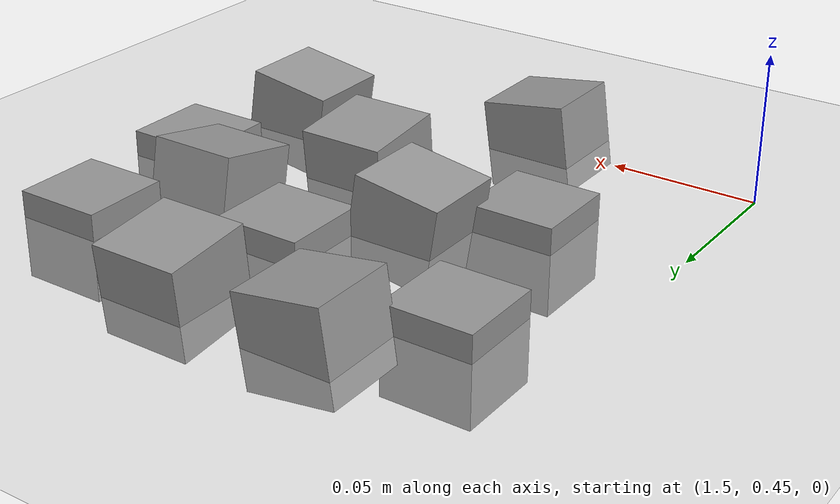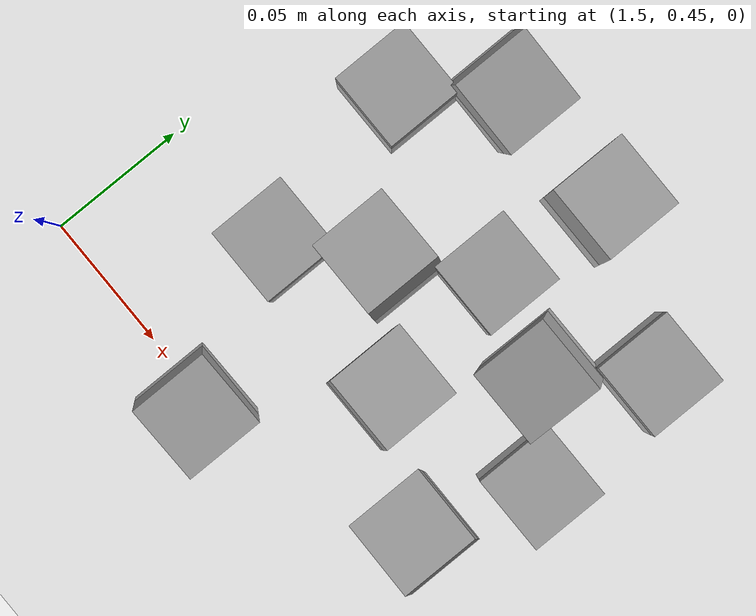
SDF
<sdf version="1.7">
 <world name="default">
  <model name="ground_plane">
   <static>1</static>
   <link name="link">
    <collision name="collision">
     <geometry><plane><normal>0 0 1</normal><size>100 100</size></plane></geometry>
     <surface><friction><ode><mu>100</mu><mu2>50</mu2></ode></friction></surface>
    </collision>
    <visual name="visual">
     <cast_shadows>0</cast_shadows>
     <geometry><plane><normal>0 0 1</normal><size>100 100</size></plane></geometry>
     <material>
      <script><uri>file://media/materials/scripts/gazebo.material</uri><name>Gazebo/Grey</name></script>
     </material>
    </visual>
   </link>
  </model>
  <model name="stone_road_0">
   <link name="link_0_clone_13">
    <inertial>
     <mass>1</mass>
     <inertia>
      <ixx>0.166667</ixx>
      <ixy>0</ixy>
      <ixz>0</ixz>
      <iyy>0.166667</iyy>
      <iyz>0</iyz>
      <izz>0.166667</izz>
     </inertia>
    </inertial>
    <pose>0.107601 -0.134881 0.003778 0.2 -0 0</pose>
    <kinematic>1</kinematic>
    <visual name="visual">
     <geometry><box><size>0.03 0.03 0.03</size></box></geometry>
     <material>
      <lighting>1</lighting>
      <script><uri>file://media/materials/scripts/gazebo.material</uri><name>Gazebo/Grey</name></script>
      <shader type="pixel"><normal_map>__default__</normal_map></shader>
      <ambient>0.3 0.3 0.3 1</ambient>
      <diffuse>0.7 0.7 0.7 1</diffuse>
      <specular>0.01 0.01 0.01 1</specular>
      <emissive>0 0 0 1</emissive>
     </material>
    </visual>
    <collision name="collision">
     <geometry><box><size>0.03 0.03 0.03</size></box></geometry>
     <surface>
      <friction>
       <ode><mu>1</mu><mu2>1</mu2><fdir1>0 0 0</fdir1><slip1>0</slip1><slip2>0</slip2></ode>
       <torsional>
        <coefficient>1</coefficient>
        <patch_radius>0</patch_radius>
        <surface_radius>0</surface_radius>
        <use_patch_radius>1</use_patch_radius>
        <ode><slip>0</slip></ode>
       </torsional>
      </friction>
      <bounce><restitution_coefficient>0</restitution_coefficient><threshold>1e+06</threshold></bounce>
      <contact>
       <collide_without_contact>0</collide_without_contact>
       <collide_without_contact_bitmask>1</collide_without_contact_bitmask>
       <collide_bitmask>1</collide_bitmask>
       <ode>
        <soft_cfm>0</soft_cfm>
        <soft_erp>0.2</soft_erp>
        <kp>1e+13</kp>
        <kd>1</kd>
        <max_vel>0.01</max_vel>
        <min_depth>0</min_depth>
       </ode>
       <bullet>
        <split_impulse>1</split_impulse>
        <split_impulse_penetration_threshold>-0.01</split_impulse_penetration_threshold>
        <soft_cfm>0</soft_cfm>
        <soft_erp>0.2</soft_erp>
        <kp>1e+13</kp>
        <kd>1</kd>
       </bullet>
      </contact>
     </surface>
    </collision>
   </link>
   <link name="link_0_clone_2_clone_0">
    <inertial>
     <mass>1</mass>
     <inertia>
      <ixx>0.166667</ixx>
      <ixy>0</ixy>
      <ixz>0</ixz>
      <iyy>0.166667</iyy>
      <iyz>0</iyz>
      <izz>0.166667</izz>
     </inertia>
    </inertial>
    <pose>0.026852 -0.0813 0.003778 0 0.15 0</pose>
    <kinematic>1</kinematic>
    <visual name="visual">
     <geometry><box><size>0.03 0.03 0.03</size></box></geometry>
     <material>
      <lighting>1</lighting>
      <script><uri>file://media/materials/scripts/gazebo.material</uri><name>Gazebo/Grey</name></script>
      <shader type="pixel"><normal_map>__default__</normal_map></shader>
      <ambient>0.3 0.3 0.3 1</ambient>
      <diffuse>0.7 0.7 0.7 1</diffuse>
      <specular>0.01 0.01 0.01 1</specular>
      <emissive>0 0 0 1</emissive>
     </material>
    </visual>
    <collision name="collision">
     <geometry><box><size>0.03 0.03 0.03</size></box></geometry>
     <surface>
      <friction>
       <ode><mu>1</mu><mu2>1</mu2><fdir1>0 0 0</fdir1><slip1>0</slip1><slip2>0</slip2></ode>
       <torsional>
        <coefficient>1</coefficient>
        <patch_radius>0</patch_radius>
        <surface_radius>0</surface_radius>
        <use_patch_radius>1</use_patch_radius>
        <ode><slip>0</slip></ode>
       </torsional>
      </friction>
      <bounce><restitution_coefficient>0</restitution_coefficient><threshold>1e+06</threshold></bounce>
      <contact>
       <collide_without_contact>0</collide_without_contact>
       <collide_without_contact_bitmask>1</collide_without_contact_bitmask>
       <collide_bitmask>1</collide_bitmask>
       <ode>
        <soft_cfm>0</soft_cfm>
        <soft_erp>0.2</soft_erp>
        <kp>1e+13</kp>
        <kd>1</kd>
        <max_vel>0.01</max_vel>
        <min_depth>0</min_depth>
       </ode>
       <bullet>
        <split_impulse>1</split_impulse>
        <split_impulse_penetration_threshold>-0.01</split_impulse_penetration_threshold>
        <soft_cfm>0</soft_cfm>
        <soft_erp>0.2</soft_erp>
        <kp>1e+13</kp>
        <kd>1</kd>
       </bullet>
      </contact>
     </surface>
    </collision>
   </link>
   <link name="link_0_clone_2_clone_2_clone_13_clone_clone_12">
    <inertial>
     <mass>1</mass>
     <inertia>
      <ixx>0.166667</ixx>
      <ixy>0</ixy>
      <ixz>0</ixz>
      <iyy>0.166667</iyy>
      <iyz>0</iyz>
      <izz>0.166667</izz>
     </inertia>
    </inertial>
    <pose>0.078701 -0.177208 0.003778 -0.1 0 0</pose>
    <kinematic>1</kinematic>
    <visual name="visual">
     <geometry><box><size>0.03 0.03 0.03</size></box></geometry>
     <material>
      <lighting>1</lighting>
      <script><uri>file://media/materials/scripts/gazebo.material</uri><name>Gazebo/Grey</name></script>
      <shader type="pixel"><normal_map>__default__</normal_map></shader>
      <ambient>0.3 0.3 0.3 1</ambient>
      <diffuse>0.7 0.7 0.7 1</diffuse>
      <specular>0.01 0.01 0.01 1</specular>
      <emissive>0 0 0 1</emissive>
     </material>
    </visual>
    <collision name="collision">
     <geometry><box><size>0.03 0.03 0.03</size></box></geometry>
     <surface>
      <friction>
       <ode><mu>1</mu><mu2>1</mu2><fdir1>0 0 0</fdir1><slip1>0</slip1><slip2>0</slip2></ode>
       <torsional>
        <coefficient>1</coefficient>
        <patch_radius>0</patch_radius>
        <surface_radius>0</surface_radius>
        <use_patch_radius>1</use_patch_radius>
        <ode><slip>0</slip></ode>
       </torsional>
      </friction>
      <bounce><restitution_coefficient>0</restitution_coefficient><threshold>1e+06</threshold></bounce>
      <contact>
       <collide_without_contact>0</collide_without_contact>
       <collide_without_contact_bitmask>1</collide_without_contact_bitmask>
       <collide_bitmask>1</collide_bitmask>
       <ode>
        <soft_cfm>0</soft_cfm>
        <soft_erp>0.2</soft_erp>
        <kp>1e+13</kp>
        <kd>1</kd>
        <max_vel>0.01</max_vel>
        <min_depth>0</min_depth>
       </ode>
       <bullet>
        <split_impulse>1</split_impulse>
        <split_impulse_penetration_threshold>-0.01</split_impulse_penetration_threshold>
        <soft_cfm>0</soft_cfm>
        <soft_erp>0.2</soft_erp>
        <kp>1e+13</kp>
        <kd>1</kd>
       </bullet>
      </contact>
     </surface>
    </collision>
   </link>
   <link name="link_0_clone_2_clone_2_clone_13_clone_clone_16_clone_15">
    <inertial>
     <mass>1</mass>
     <inertia>
      <ixx>0.166667</ixx>
      <ixy>0</ixy>
      <ixz>0</ixz>
      <iyy>0.166667</iyy>
      <iyz>0</iyz>
      <izz>0.166667</izz>
     </inertia>
    </inertial>
    <pose>0.133032 -0.103459 -0.006222 0 -0 0</pose>
    <kinematic>1</kinematic>
    <visual name="visual">
     <geometry><box><size>0.03 0.03 0.03</size></box></geometry>
     <material>
      <lighting>1</lighting>
      <script><uri>file://media/materials/scripts/gazebo.material</uri><name>Gazebo/Grey</name></script>
      <shader type="pixel"><normal_map>__default__</normal_map></shader>
      <ambient>0.3 0.3 0.3 1</ambient>
      <diffuse>0.7 0.7 0.7 1</diffuse>
      <specular>0.01 0.01 0.01 1</specular>
      <emissive>0 0 0 1</emissive>
     </material>
    </visual>
    <collision name="collision">
     <geometry><box><size>0.03 0.03 0.03</size></box></geometry>
     <surface>
      <friction>
       <ode><mu>1</mu><mu2>1</mu2><fdir1>0 0 0</fdir1><slip1>0</slip1><slip2>0</slip2></ode>
       <torsional>
        <coefficient>1</coefficient>
        <patch_radius>0</patch_radius>
        <surface_radius>0</surface_radius>
        <use_patch_radius>1</use_patch_radius>
        <ode><slip>0</slip></ode>
       </torsional>
      </friction>
      <bounce><restitution_coefficient>0</restitution_coefficient><threshold>1e+06</threshold></bounce>
      <contact>
       <collide_without_contact>0</collide_without_contact>
       <collide_without_contact_bitmask>1</collide_without_contact_bitmask>
       <collide_bitmask>1</collide_bitmask>
       <ode>
        <soft_cfm>0</soft_cfm>
        <soft_erp>0.2</soft_erp>
        <kp>1e+13</kp>
        <kd>1</kd>
        <max_vel>0.01</max_vel>
        <min_depth>0</min_depth>
       </ode>
       <bullet>
        <split_impulse>1</split_impulse>
        <split_impulse_penetration_threshold>-0.01</split_impulse_penetration_threshold>
        <soft_cfm>0</soft_cfm>
        <soft_erp>0.2</soft_erp>
        <kp>1e+13</kp>
        <kd>1</kd>
       </bullet>
      </contact>
     </surface>
    </collision>
   </link>
   <link name="link_0_clone_2_clone_2_clone_13_clone_clone_16_clone_16">
    <inertial>
     <mass>1</mass>
     <inertia>
      <ixx>0.166667</ixx>
      <ixy>0</ixy>
      <ixz>0</ixz>
      <iyy>0.166667</iyy>
      <iyz>0</iyz>
      <izz>0.166667</izz>
     </inertia>
    </inertial>
    <pose>0.071475 -0.124425 -0.006222 0 -0 0</pose>
    <kinematic>1</kinematic>
    <visual name="visual">
     <geometry><box><size>0.03 0.03 0.03</size></box></geometry>
     <material>
      <lighting>1</lighting>
      <script><uri>file://media/materials/scripts/gazebo.material</uri><name>Gazebo/Grey</name></script>
      <shader type="pixel"><normal_map>__default__</normal_map></shader>
      <ambient>0.3 0.3 0.3 1</ambient>
      <diffuse>0.7 0.7 0.7 1</diffuse>
      <specular>0.01 0.01 0.01 1</specular>
      <emissive>0 0 0 1</emissive>
     </material>
    </visual>
    <collision name="collision">
     <geometry><box><size>0.03 0.03 0.03</size></box></geometry>
     <surface>
      <friction>
       <ode><mu>1</mu><mu2>1</mu2><fdir1>0 0 0</fdir1><slip1>0</slip1><slip2>0</slip2></ode>
       <torsional>
        <coefficient>1</coefficient>
        <patch_radius>0</patch_radius>
        <surface_radius>0</surface_radius>
        <use_patch_radius>1</use_patch_radius>
        <ode><slip>0</slip></ode>
       </torsional>
      </friction>
      <bounce><restitution_coefficient>0</restitution_coefficient><threshold>1e+06</threshold></bounce>
      <contact>
       <collide_without_contact>0</collide_without_contact>
       <collide_without_contact_bitmask>1</collide_without_contact_bitmask>
       <collide_bitmask>1</collide_bitmask>
       <ode>
        <soft_cfm>0</soft_cfm>
        <soft_erp>0.2</soft_erp>
        <kp>1e+13</kp>
        <kd>1</kd>
        <max_vel>0.01</max_vel>
        <min_depth>0</min_depth>
       </ode>
       <bullet>
        <split_impulse>1</split_impulse>
        <split_impulse_penetration_threshold>-0.01</split_impulse_penetration_threshold>
        <soft_cfm>0</soft_cfm>
        <soft_erp>0.2</soft_erp>
        <kp>1e+13</kp>
        <kd>1</kd>
       </bullet>
      </contact>
     </surface>
    </collision>
   </link>
   <link name="link_0_clone_2_clone_2_clone_13_clone_clone_16_clone_17">
    <inertial>
     <mass>1</mass>
     <inertia>
      <ixx>0.166667</ixx>
      <ixy>0</ixy>
      <ixz>0</ixz>
      <iyy>0.166667</iyy>
      <iyz>0</iyz>
      <izz>0.166667</izz>
     </inertia>
    </inertial>
    <pose>0.014877 -0.175392 -0.006222 0 -0 0</pose>
    <kinematic>1</kinematic>
    <visual name="visual">
     <geometry><box><size>0.03 0.03 0.03</size></box></geometry>
     <material>
      <lighting>1</lighting>
      <script><uri>file://media/materials/scripts/gazebo.material</uri><name>Gazebo/Grey</name></script>
      <shader type="pixel"><normal_map>__default__</normal_map></shader>
      <ambient>0.3 0.3 0.3 1</ambient>
      <diffuse>0.7 0.7 0.7 1</diffuse>
      <specular>0.01 0.01 0.01 1</specular>
      <emissive>0 0 0 1</emissive>
     </material>
    </visual>
    <collision name="collision">
     <geometry><box><size>0.03 0.03 0.03</size></box></geometry>
     <surface>
      <friction>
       <ode><mu>1</mu><mu2>1</mu2><fdir1>0 0 0</fdir1><slip1>0</slip1><slip2>0</slip2></ode>
       <torsional>
        <coefficient>1</coefficient>
        <patch_radius>0</patch_radius>
        <surface_radius>0</surface_radius>
        <use_patch_radius>1</use_patch_radius>
        <ode><slip>0</slip></ode>
       </torsional>
      </friction>
      <bounce><restitution_coefficient>0</restitution_coefficient><threshold>1e+06</threshold></bounce>
      <contact>
       <collide_without_contact>0</collide_without_contact>
       <collide_without_contact_bitmask>1</collide_without_contact_bitmask>
       <collide_bitmask>1</collide_bitmask>
       <ode>
        <soft_cfm>0</soft_cfm>
        <soft_erp>0.2</soft_erp>
        <kp>1e+13</kp>
        <kd>1</kd>
        <max_vel>0.01</max_vel>
        <min_depth>0</min_depth>
       </ode>
       <bullet>
        <split_impulse>1</split_impulse>
        <split_impulse_penetration_threshold>-0.01</split_impulse_penetration_threshold>
        <soft_cfm>0</soft_cfm>
        <soft_erp>0.2</soft_erp>
        <kp>1e+13</kp>
        <kd>1</kd>
       </bullet>
      </contact>
     </surface>
    </collision>
   </link>
   <link name="link_0_clone_2_clone_2_clone_13_clone_clone_16_clone_18">
    <inertial>
     <mass>1</mass>
     <inertia>
      <ixx>0.166667</ixx>
      <ixy>0</ixy>
      <ixz>0</ixz>
      <iyy>0.166667</iyy>
      <iyz>0</iyz>
      <izz>0.166667</izz>
     </inertia>
    </inertial>
    <pose>0.137197 -0.158693 -0.006222 0 -0 0</pose>
    <kinematic>1</kinematic>
    <visual name="visual">
     <geometry><box><size>0.03 0.03 0.03</size></box></geometry>
     <material>
      <lighting>1</lighting>
      <script><uri>file://media/materials/scripts/gazebo.material</uri><name>Gazebo/Grey</name></script>
      <shader type="pixel"><normal_map>__default__</normal_map></shader>
      <ambient>0.3 0.3 0.3 1</ambient>
      <diffuse>0.7 0.7 0.7 1</diffuse>
      <specular>0.01 0.01 0.01 1</specular>
      <emissive>0 0 0 1</emissive>
     </material>
    </visual>
    <collision name="collision">
     <geometry><box><size>0.03 0.03 0.03</size></box></geometry>
     <surface>
      <friction>
       <ode><mu>1</mu><mu2>1</mu2><fdir1>0 0 0</fdir1><slip1>0</slip1><slip2>0</slip2></ode>
       <torsional>
        <coefficient>1</coefficient>
        <patch_radius>0</patch_radius>
        <surface_radius>0</surface_radius>
        <use_patch_radius>1</use_patch_radius>
        <ode><slip>0</slip></ode>
       </torsional>
      </friction>
      <bounce><restitution_coefficient>0</restitution_coefficient><threshold>1e+06</threshold></bounce>
      <contact>
       <collide_without_contact>0</collide_without_contact>
       <collide_without_contact_bitmask>1</collide_without_contact_bitmask>
       <collide_bitmask>1</collide_bitmask>
       <ode>
        <soft_cfm>0</soft_cfm>
        <soft_erp>0.2</soft_erp>
        <kp>1e+13</kp>
        <kd>1</kd>
        <max_vel>0.01</max_vel>
        <min_depth>0</min_depth>
       </ode>
       <bullet>
        <split_impulse>1</split_impulse>
        <split_impulse_penetration_threshold>-0.01</split_impulse_penetration_threshold>
        <soft_cfm>0</soft_cfm>
        <soft_erp>0.2</soft_erp>
        <kp>1e+13</kp>
        <kd>1</kd>
       </bullet>
      </contact>
     </surface>
    </collision>
   </link>
   <link name="link_0_clone_2_clone_2_clone_13_clone_clone_16_clone_7">
    <inertial>
     <mass>1</mass>
     <inertia>
      <ixx>0.166667</ixx>
      <ixy>0</ixy>
      <ixz>0</ixz>
      <iyy>0.166667</iyy>
      <iyz>0</iyz>
      <izz>0.166667</izz>
     </inertia>
    </inertial>
    <pose>0.000883 -0.109959 -0.006222 0 -0 0</pose>
    <kinematic>1</kinematic>
    <visual name="visual">
     <geometry><box><size>0.03 0.03 0.03</size></box></geometry>
     <material>
      <lighting>1</lighting>
      <script><uri>file://media/materials/scripts/gazebo.material</uri><name>Gazebo/Grey</name></script>
      <shader type="pixel"><normal_map>__default__</normal_map></shader>
      <ambient>0.3 0.3 0.3 1</ambient>
      <diffuse>0.7 0.7 0.7 1</diffuse>
      <specular>0.01 0.01 0.01 1</specular>
      <emissive>0 0 0 1</emissive>
     </material>
    </visual>
    <collision name="collision">
     <geometry><box><size>0.03 0.03 0.03</size></box></geometry>
     <surface>
      <friction>
       <ode><mu>1</mu><mu2>1</mu2><fdir1>0 0 0</fdir1><slip1>0</slip1><slip2>0</slip2></ode>
       <torsional>
        <coefficient>1</coefficient>
        <patch_radius>0</patch_radius>
        <surface_radius>0</surface_radius>
        <use_patch_radius>1</use_patch_radius>
        <ode><slip>0</slip></ode>
       </torsional>
      </friction>
      <bounce><restitution_coefficient>0</restitution_coefficient><threshold>1e+06</threshold></bounce>
      <contact>
       <collide_without_contact>0</collide_without_contact>
       <collide_without_contact_bitmask>1</collide_without_contact_bitmask>
       <collide_bitmask>1</collide_bitmask>
       <ode>
        <soft_cfm>0</soft_cfm>
        <soft_erp>0.2</soft_erp>
        <kp>1e+13</kp>
        <kd>1</kd>
        <max_vel>0.01</max_vel>
        <min_depth>0</min_depth>
       </ode>
       <bullet>
        <split_impulse>1</split_impulse>
        <split_impulse_penetration_threshold>-0.01</split_impulse_penetration_threshold>
        <soft_cfm>0</soft_cfm>
        <soft_erp>0.2</soft_erp>
        <kp>1e+13</kp>
        <kd>1</kd>
       </bullet>
      </contact>
     </surface>
    </collision>
   </link>
   <link name="link_0_clone_2_clone_2_clone_13_clone_clone_5">
    <inertial>
     <mass>1</mass>
     <inertia>
      <ixx>0.166667</ixx>
      <ixy>0</ixy>
      <ixz>0</ixz>
      <iyy>0.166667</iyy>
      <iyz>0</iyz>
      <izz>0.166667</izz>
     </inertia>
    </inertial>
    <pose>0.076743 -0.079785 0.003778 -0.1 0 0</pose>
    <kinematic>1</kinematic>
    <visual name="visual">
     <geometry><box><size>0.03 0.03 0.03</size></box></geometry>
     <material>
      <lighting>1</lighting>
      <script><uri>file://media/materials/scripts/gazebo.material</uri><name>Gazebo/Grey</name></script>
      <shader type="pixel"><normal_map>__default__</normal_map></shader>
      <ambient>0.3 0.3 0.3 1</ambient>
      <diffuse>0.7 0.7 0.7 1</diffuse>
      <specular>0.01 0.01 0.01 1</specular>
      <emissive>0 0 0 1</emissive>
     </material>
    </visual>
    <collision name="collision">
     <geometry><box><size>0.03 0.03 0.03</size></box></geometry>
     <surface>
      <friction>
       <ode><mu>1</mu><mu2>1</mu2><fdir1>0 0 0</fdir1><slip1>0</slip1><slip2>0</slip2></ode>
       <torsional>
        <coefficient>1</coefficient>
        <patch_radius>0</patch_radius>
        <surface_radius>0</surface_radius>
        <use_patch_radius>1</use_patch_radius>
        <ode><slip>0</slip></ode>
       </torsional>
      </friction>
      <bounce><restitution_coefficient>0</restitution_coefficient><threshold>1e+06</threshold></bounce>
      <contact>
       <collide_without_contact>0</collide_without_contact>
       <collide_without_contact_bitmask>1</collide_without_contact_bitmask>
       <collide_bitmask>1</collide_bitmask>
       <ode>
        <soft_cfm>0</soft_cfm>
        <soft_erp>0.2</soft_erp>
        <kp>1e+13</kp>
        <kd>1</kd>
        <max_vel>0.01</max_vel>
        <min_depth>0</min_depth>
       </ode>
       <bullet>
        <split_impulse>1</split_impulse>
        <split_impulse_penetration_threshold>-0.01</split_impulse_penetration_threshold>
        <soft_cfm>0</soft_cfm>
        <soft_erp>0.2</soft_erp>
        <kp>1e+13</kp>
        <kd>1</kd>
       </bullet>
      </contact>
     </surface>
    </collision>
   </link>
   <link name="link_0_clone_2_clone_2_clone_4">
    <inertial>
     <mass>1</mass>
     <inertia>
      <ixx>0.166667</ixx>
      <ixy>0</ixy>
      <ixz>0</ixz>
      <iyy>0.166667</iyy>
      <iyz>0</iyz>
      <izz>0.166667</izz>
     </inertia>
    </inertial>
    <pose>0.042048 -0.151731 0.003778 0 -0.15 0</pose>
    <kinematic>1</kinematic>
    <visual name="visual">
     <geometry><box><size>0.03 0.03 0.03</size></box></geometry>
     <material>
      <lighting>1</lighting>
      <script><uri>file://media/materials/scripts/gazebo.material</uri><name>Gazebo/Grey</name></script>
      <shader type="pixel"><normal_map>__default__</normal_map></shader>
      <ambient>0.3 0.3 0.3 1</ambient>
      <diffuse>0.7 0.7 0.7 1</diffuse>
      <specular>0.01 0.01 0.01 1</specular>
      <emissive>0 0 0 1</emissive>
     </material>
    </visual>
    <collision name="collision">
     <geometry><box><size>0.03 0.03 0.03</size></box></geometry>
     <surface>
      <friction>
       <ode><mu>1</mu><mu2>1</mu2><fdir1>0 0 0</fdir1><slip1>0</slip1><slip2>0</slip2></ode>
       <torsional>
        <coefficient>1</coefficient>
        <patch_radius>0</patch_radius>
        <surface_radius>0</surface_radius>
        <use_patch_radius>1</use_patch_radius>
        <ode><slip>0</slip></ode>
       </torsional>
      </friction>
      <bounce><restitution_coefficient>0</restitution_coefficient><threshold>1e+06</threshold></bounce>
      <contact>
       <collide_without_contact>0</collide_without_contact>
       <collide_without_contact_bitmask>1</collide_without_contact_bitmask>
       <collide_bitmask>1</collide_bitmask>
       <ode>
        <soft_cfm>0</soft_cfm>
        <soft_erp>0.2</soft_erp>
        <kp>1e+13</kp>
        <kd>1</kd>
        <max_vel>0.01</max_vel>
        <min_depth>0</min_depth>
       </ode>
       <bullet>
        <split_impulse>1</split_impulse>
        <split_impulse_penetration_threshold>-0.01</split_impulse_penetration_threshold>
        <soft_cfm>0</soft_cfm>
        <soft_erp>0.2</soft_erp>
        <kp>1e+13</kp>
        <kd>1</kd>
       </bullet>
      </contact>
     </surface>
    </collision>
   </link>
   <link name="link_0_clone_2_clone_2_clone_8">
    <inertial>
     <mass>1</mass>
     <inertia>
      <ixx>0.166667</ixx>
      <ixy>0</ixy>
      <ixz>0</ixz>
      <iyy>0.166667</iyy>
      <iyz>0</iyz>
      <izz>0.166667</izz>
     </inertia>
    </inertial>
    <pose>0.122141 -0.201696 0.003778 0 -0.15 0</pose>
    <kinematic>1</kinematic>
    <visual name="visual">
     <geometry><box><size>0.03 0.03 0.03</size></box></geometry>
     <material>
      <lighting>1</lighting>
      <script><uri>file://media/materials/scripts/gazebo.material</uri><name>Gazebo/Grey</name></script>
      <shader type="pixel"><normal_map>__default__</normal_map></shader>
      <ambient>0.3 0.3 0.3 1</ambient>
      <diffuse>0.7 0.7 0.7 1</diffuse>
      <specular>0.01 0.01 0.01 1</specular>
      <emissive>0 0 0 1</emissive>
     </material>
    </visual>
    <collision name="collision">
     <geometry><box><size>0.03 0.03 0.03</size></box></geometry>
     <surface>
      <friction>
       <ode><mu>1</mu><mu2>1</mu2><fdir1>0 0 0</fdir1><slip1>0</slip1><slip2>0</slip2></ode>
       <torsional>
        <coefficient>1</coefficient>
        <patch_radius>0</patch_radius>
        <surface_radius>0</surface_radius>
        <use_patch_radius>1</use_patch_radius>
        <ode><slip>0</slip></ode>
       </torsional>
      </friction>
      <bounce><restitution_coefficient>0</restitution_coefficient><threshold>1e+06</threshold></bounce>
      <contact>
       <collide_without_contact>0</collide_without_contact>
       <collide_without_contact_bitmask>1</collide_without_contact_bitmask>
       <collide_bitmask>1</collide_bitmask>
       <ode>
        <soft_cfm>0</soft_cfm>
        <soft_erp>0.2</soft_erp>
        <kp>1e+13</kp>
        <kd>1</kd>
        <max_vel>0.01</max_vel>
        <min_depth>0</min_depth>
       </ode>
       <bullet>
        <split_impulse>1</split_impulse>
        <split_impulse_penetration_threshold>-0.01</split_impulse_penetration_threshold>
        <soft_cfm>0</soft_cfm>
        <soft_erp>0.2</soft_erp>
        <kp>1e+13</kp>
        <kd>1</kd>
       </bullet>
      </contact>
     </surface>
    </collision>
   </link>
   <link name="link_0_clone_2_clone_7">
    <inertial>
     <mass>1</mass>
     <inertia>
      <ixx>0.166667</ixx>
      <ixy>0</ixy>
      <ixz>0</ixz>
      <iyy>0.166667</iyy>
      <iyz>0</iyz>
      <izz>0.166667</izz>
     </inertia>
    </inertial>
    <pose>0.04255 -0.232691 0.003778 0 0.15 0</pose>
    <kinematic>1</kinematic>
    <visual name="visual">
     <geometry><box><size>0.03 0.03 0.03</size></box></geometry>
     <material>
      <lighting>1</lighting>
      <script><uri>file://media/materials/scripts/gazebo.material</uri><name>Gazebo/Grey</name></script>
      <shader type="pixel"><normal_map>__default__</normal_map></shader>
      <ambient>0.3 0.3 0.3 1</ambient>
      <diffuse>0.7 0.7 0.7 1</diffuse>
      <specular>0.01 0.01 0.01 1</specular>
      <emissive>0 0 0 1</emissive>
     </material>
    </visual>
    <collision name="collision">
     <geometry><box><size>0.03 0.03 0.03</size></box></geometry>
     <surface>
      <friction>
       <ode><mu>1</mu><mu2>1</mu2><fdir1>0 0 0</fdir1><slip1>0</slip1><slip2>0</slip2></ode>
       <torsional>
        <coefficient>1</coefficient>
        <patch_radius>0</patch_radius>
        <surface_radius>0</surface_radius>
        <use_patch_radius>1</use_patch_radius>
        <ode><slip>0</slip></ode>
       </torsional>
      </friction>
      <bounce><restitution_coefficient>0</restitution_coefficient><threshold>1e+06</threshold></bounce>
      <contact>
       <collide_without_contact>0</collide_without_contact>
       <collide_without_contact_bitmask>1</collide_without_contact_bitmask>
       <collide_bitmask>1</collide_bitmask>
       <ode>
        <soft_cfm>0</soft_cfm>
        <soft_erp>0.2</soft_erp>
        <kp>1e+13</kp>
        <kd>1</kd>
        <max_vel>0.01</max_vel>
        <min_depth>0</min_depth>
       </ode>
       <bullet>
        <split_impulse>1</split_impulse>
        <split_impulse_penetration_threshold>-0.01</split_impulse_penetration_threshold>
        <soft_cfm>0</soft_cfm>
        <soft_erp>0.2</soft_erp>
        <kp>1e+13</kp>
        <kd>1</kd>
       </bullet>
      </contact>
     </surface>
    </collision>
   </link>
   <static>0</static>
   <pose>1.53544 0.679184 -0 0 -0 0</pose>
  </model>
 </world>
</sdf>
